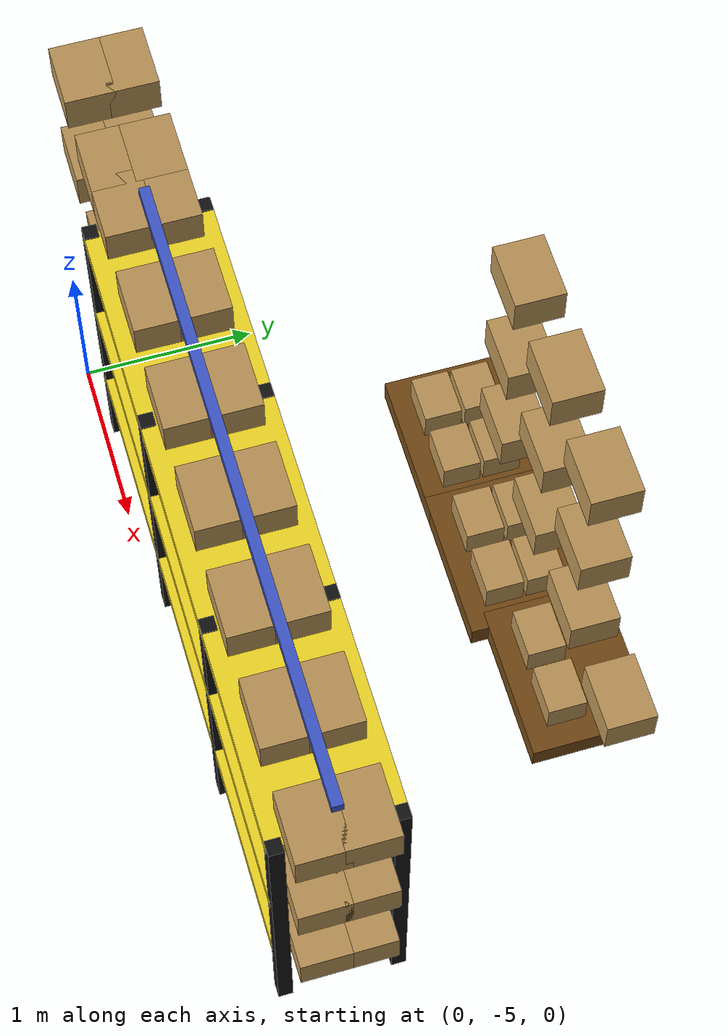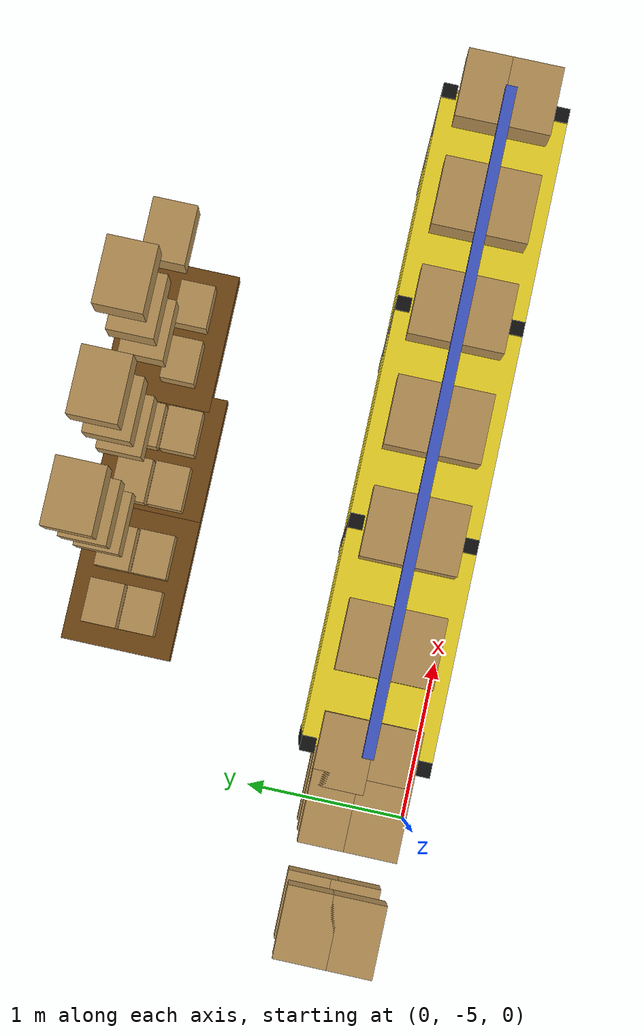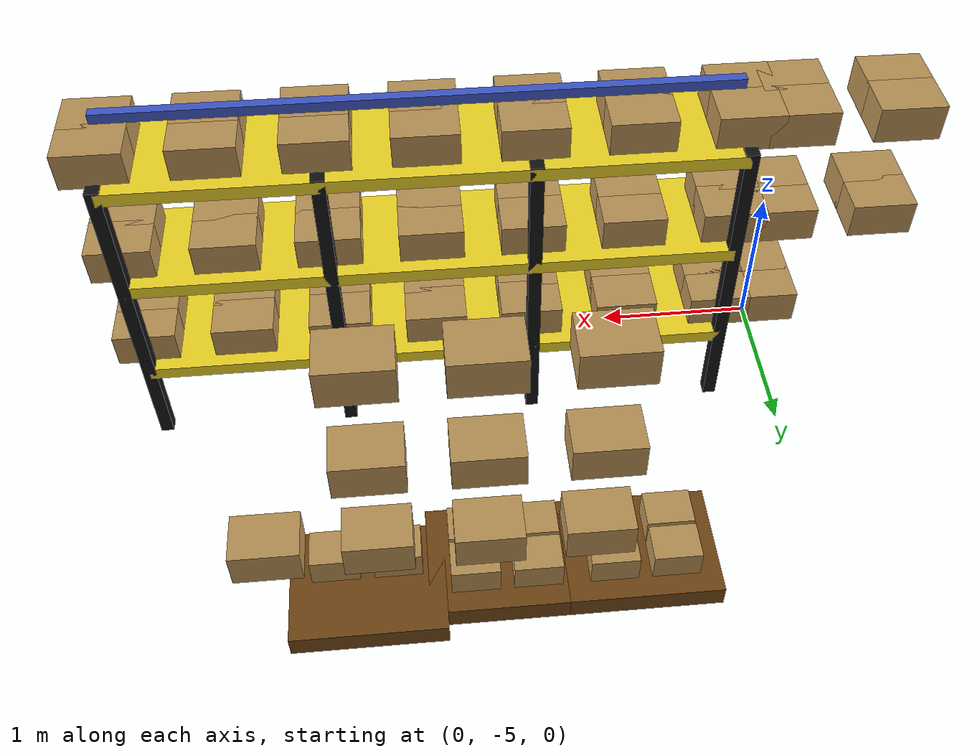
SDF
<sdf version="1.6">
 <world name="fuel_warehouse_world">
  <include><uri>model://sun</uri></include>
  <model name="right_rack_bottom_box_0">
   <static>true</static>
   <pose>1.4000000000000001 -2.8200000000000003 0.68 0 0 0</pose>
   <link name="link">
    <visual name="visual">
     <geometry><box><size>0.38 0.28 0.22</size></box></geometry>
     <material><ambient>0.73 0.58 0.34 1</ambient><diffuse>0.73 0.58 0.34 1</diffuse></material>
    </visual>
    <collision name="collision"><geometry><box><size>0.38 0.28 0.22</size></box></geometry></collision>
   </link>
  </model>
  <model name="right_rack_bottom_box_2">
   <static>true</static>
   <pose>2.0 -2.8200000000000003 0.68 0 0 0</pose>
   <link name="link">
    <visual name="visual">
     <geometry><box><size>0.38 0.28 0.22</size></box></geometry>
     <material><ambient>0.73 0.58 0.34 1</ambient><diffuse>0.73 0.58 0.34 1</diffuse></material>
    </visual>
    <collision name="collision"><geometry><box><size>0.38 0.28 0.22</size></box></geometry></collision>
   </link>
  </model>
  <model name="right_rack_bottom_box_4">
   <static>true</static>
   <pose>2.6 -2.8200000000000003 0.68 0 0 0</pose>
   <link name="link">
    <visual name="visual">
     <geometry><box><size>0.38 0.28 0.22</size></box></geometry>
     <material><ambient>0.73 0.58 0.34 1</ambient><diffuse>0.73 0.58 0.34 1</diffuse></material>
    </visual>
    <collision name="collision"><geometry><box><size>0.38 0.28 0.22</size></box></geometry></collision>
   </link>
  </model>
  <model name="right_rack_bottom_box_6">
   <static>true</static>
   <pose>3.2 -2.8200000000000003 0.68 0 0 0</pose>
   <link name="link">
    <visual name="visual">
     <geometry><box><size>0.38 0.28 0.22</size></box></geometry>
     <material><ambient>0.73 0.58 0.34 1</ambient><diffuse>0.73 0.58 0.34 1</diffuse></material>
    </visual>
    <collision name="collision"><geometry><box><size>0.38 0.28 0.22</size></box></geometry></collision>
   </link>
  </model>
  <model name="right_rack_bottom_box_14">
   <static>true</static>
   <pose>1.4000000000000001 -2.8200000000000003 1.38 0 0 0</pose>
   <link name="link">
    <visual name="visual">
     <geometry><box><size>0.38 0.28 0.22</size></box></geometry>
     <material><ambient>0.73 0.58 0.34 1</ambient><diffuse>0.73 0.58 0.34 1</diffuse></material>
    </visual>
    <collision name="collision"><geometry><box><size>0.38 0.28 0.22</size></box></geometry></collision>
   </link>
  </model>
  <model name="right_rack_bottom_box_16">
   <static>true</static>
   <pose>2.0 -2.8200000000000003 1.38 0 0 0</pose>
   <link name="link">
    <visual name="visual">
     <geometry><box><size>0.38 0.28 0.22</size></box></geometry>
     <material><ambient>0.73 0.58 0.34 1</ambient><diffuse>0.73 0.58 0.34 1</diffuse></material>
    </visual>
    <collision name="collision"><geometry><box><size>0.38 0.28 0.22</size></box></geometry></collision>
   </link>
  </model>
  <model name="right_rack_bottom_box_18">
   <static>true</static>
   <pose>2.6 -2.8200000000000003 1.38 0 0 0</pose>
   <link name="link">
    <visual name="visual">
     <geometry><box><size>0.38 0.28 0.22</size></box></geometry>
     <material><ambient>0.73 0.58 0.34 1</ambient><diffuse>0.73 0.58 0.34 1</diffuse></material>
    </visual>
    <collision name="collision"><geometry><box><size>0.38 0.28 0.22</size></box></geometry></collision>
   </link>
  </model>
  <model name="right_rack_bottom_box_28">
   <static>true</static>
   <pose>1.4000000000000001 -2.8200000000000003 2.08 0 0 0</pose>
   <link name="link">
    <visual name="visual">
     <geometry><box><size>0.38 0.28 0.22</size></box></geometry>
     <material><ambient>0.73 0.58 0.34 1</ambient><diffuse>0.73 0.58 0.34 1</diffuse></material>
    </visual>
    <collision name="collision"><geometry><box><size>0.38 0.28 0.22</size></box></geometry></collision>
   </link>
  </model>
  <model name="right_rack_bottom_box_30">
   <static>true</static>
   <pose>2.0 -2.8200000000000003 2.08 0 0 0</pose>
   <link name="link">
    <visual name="visual">
     <geometry><box><size>0.38 0.28 0.22</size></box></geometry>
     <material><ambient>0.73 0.58 0.34 1</ambient><diffuse>0.73 0.58 0.34 1</diffuse></material>
    </visual>
    <collision name="collision"><geometry><box><size>0.38 0.28 0.22</size></box></geometry></collision>
   </link>
  </model>
  <model name="right_rack_bottom_box_32">
   <static>true</static>
   <pose>2.6 -2.8200000000000003 2.08 0 0 0</pose>
   <link name="link">
    <visual name="visual">
     <geometry><box><size>0.38 0.28 0.22</size></box></geometry>
     <material><ambient>0.73 0.58 0.34 1</ambient><diffuse>0.73 0.58 0.34 1</diffuse></material>
    </visual>
    <collision name="collision"><geometry><box><size>0.38 0.28 0.22</size></box></geometry></collision>
   </link>
  </model>
  <model name="bottom_left_box_12">
   <static>true</static>
   <pose>0.10000000000000009 -4.72 0.68 0 0 0</pose>
   <link name="link">
    <visual name="visual">
     <geometry><box><size>0.38 0.28 0.22</size></box></geometry>
     <material><ambient>0.73 0.58 0.34 1</ambient><diffuse>0.73 0.58 0.34 1</diffuse></material>
    </visual>
    <collision name="collision"><geometry><box><size>0.38 0.28 0.22</size></box></geometry></collision>
   </link>
  </model>
  <model name="bottom_left_box_13">
   <static>true</static>
   <pose>0.10000000000000009 -4.4799999999999995 0.68 0 0 0</pose>
   <link name="link">
    <visual name="visual">
     <geometry><box><size>0.38 0.28 0.22</size></box></geometry>
     <material><ambient>0.73 0.58 0.34 1</ambient><diffuse>0.73 0.58 0.34 1</diffuse></material>
    </visual>
    <collision name="collision"><geometry><box><size>0.38 0.28 0.22</size></box></geometry></collision>
   </link>
  </model>
  <model name="bottom_left_box_24">
   <static>true</static>
   <pose>-0.5 -4.72 1.38 0 0 0</pose>
   <link name="link">
    <visual name="visual">
     <geometry><box><size>0.38 0.28 0.22</size></box></geometry>
     <material><ambient>0.73 0.58 0.34 1</ambient><diffuse>0.73 0.58 0.34 1</diffuse></material>
    </visual>
    <collision name="collision"><geometry><box><size>0.38 0.28 0.22</size></box></geometry></collision>
   </link>
  </model>
  <model name="bottom_left_box_25">
   <static>true</static>
   <pose>-0.5 -4.4799999999999995 1.38 0 0 0</pose>
   <link name="link">
    <visual name="visual">
     <geometry><box><size>0.38 0.28 0.22</size></box></geometry>
     <material><ambient>0.73 0.58 0.34 1</ambient><diffuse>0.73 0.58 0.34 1</diffuse></material>
    </visual>
    <collision name="collision"><geometry><box><size>0.38 0.28 0.22</size></box></geometry></collision>
   </link>
  </model>
  <model name="bottom_left_box_26">
   <static>true</static>
   <pose>0.10000000000000009 -4.72 1.38 0 0 0</pose>
   <link name="link">
    <visual name="visual">
     <geometry><box><size>0.38 0.28 0.22</size></box></geometry>
     <material><ambient>0.73 0.58 0.34 1</ambient><diffuse>0.73 0.58 0.34 1</diffuse></material>
    </visual>
    <collision name="collision"><geometry><box><size>0.38 0.28 0.22</size></box></geometry></collision>
   </link>
  </model>
  <model name="bottom_left_box_27">
   <static>true</static>
   <pose>0.10000000000000009 -4.4799999999999995 1.38 0 0 0</pose>
   <link name="link">
    <visual name="visual">
     <geometry><box><size>0.38 0.28 0.22</size></box></geometry>
     <material><ambient>0.73 0.58 0.34 1</ambient><diffuse>0.73 0.58 0.34 1</diffuse></material>
    </visual>
    <collision name="collision"><geometry><box><size>0.38 0.28 0.22</size></box></geometry></collision>
   </link>
  </model>
  <model name="bottom_left_box_38">
   <static>true</static>
   <pose>-0.5 -4.72 2.08 0 0 0</pose>
   <link name="link">
    <visual name="visual">
     <geometry><box><size>0.38 0.28 0.22</size></box></geometry>
     <material><ambient>0.73 0.58 0.34 1</ambient><diffuse>0.73 0.58 0.34 1</diffuse></material>
    </visual>
    <collision name="collision"><geometry><box><size>0.38 0.28 0.22</size></box></geometry></collision>
   </link>
  </model>
  <model name="bottom_left_box_39">
   <static>true</static>
   <pose>-0.5 -4.4799999999999995 2.08 0 0 0</pose>
   <link name="link">
    <visual name="visual">
     <geometry><box><size>0.38 0.28 0.22</size></box></geometry>
     <material><ambient>0.73 0.58 0.34 1</ambient><diffuse>0.73 0.58 0.34 1</diffuse></material>
    </visual>
    <collision name="collision"><geometry><box><size>0.38 0.28 0.22</size></box></geometry></collision>
   </link>
  </model>
  <model name="bottom_left_box_40">
   <static>true</static>
   <pose>0.10000000000000009 -4.72 2.08 0 0 0</pose>
   <link name="link">
    <visual name="visual">
     <geometry><box><size>0.38 0.28 0.22</size></box></geometry>
     <material><ambient>0.73 0.58 0.34 1</ambient><diffuse>0.73 0.58 0.34 1</diffuse></material>
    </visual>
    <collision name="collision"><geometry><box><size>0.38 0.28 0.22</size></box></geometry></collision>
   </link>
  </model>
  <model name="bottom_left_box_41">
   <static>true</static>
   <pose>0.10000000000000009 -4.4799999999999995 2.08 0 0 0</pose>
   <link name="link">
    <visual name="visual">
     <geometry><box><size>0.38 0.28 0.22</size></box></geometry>
     <material><ambient>0.73 0.58 0.34 1</ambient><diffuse>0.73 0.58 0.34 1</diffuse></material>
    </visual>
    <collision name="collision"><geometry><box><size>0.38 0.28 0.22</size></box></geometry></collision>
   </link>
  </model>
  <model name="bottom_right">
   <static>true</static>
   <pose>2.2 -4.6 0 0 0 0.0</pose>
   <link name="deck_0">
    <pose>0 0 0.55 0 0 0</pose>
    <visual name="visual">
     <geometry><box><size>3.6 0.7 0.08</size></box></geometry>
     <material><ambient>0.95 0.85 0.15 1</ambient><diffuse>0.95 0.85 0.15 1</diffuse></material>
    </visual>
    <collision name="collision"><geometry><box><size>3.6 0.7 0.08</size></box></geometry></collision>
   </link>
   <link name="deck_1">
    <pose>0 0 1.25 0 0 0</pose>
    <visual name="visual">
     <geometry><box><size>3.6 0.7 0.08</size></box></geometry>
     <material><ambient>0.95 0.85 0.15 1</ambient><diffuse>0.95 0.85 0.15 1</diffuse></material>
    </visual>
    <collision name="collision"><geometry><box><size>3.6 0.7 0.08</size></box></geometry></collision>
   </link>
   <link name="deck_2">
    <pose>0 0 1.95 0 0 0</pose>
    <visual name="visual">
     <geometry><box><size>3.6 0.7 0.08</size></box></geometry>
     <material><ambient>0.95 0.85 0.15 1</ambient><diffuse>0.95 0.85 0.15 1</diffuse></material>
    </visual>
    <collision name="collision"><geometry><box><size>3.6 0.7 0.08</size></box></geometry></collision>
   </link>
   <link name="leg_0_0">
    <pose>-1.8 -0.31 1.0 0 0 0</pose>
    <visual name="visual">
     <geometry><box><size>0.08 0.08 2.0</size></box></geometry>
     <material><ambient>0.07 0.07 0.07 1</ambient><diffuse>0.07 0.07 0.07 1</diffuse></material>
    </visual>
    <collision name="collision"><geometry><box><size>0.08 0.08 2.0</size></box></geometry></collision>
   </link>
   <link name="leg_0_1">
    <pose>-1.8 0.31 1.0 0 0 0</pose>
    <visual name="visual">
     <geometry><box><size>0.08 0.08 2.0</size></box></geometry>
     <material><ambient>0.07 0.07 0.07 1</ambient><diffuse>0.07 0.07 0.07 1</diffuse></material>
    </visual>
    <collision name="collision"><geometry><box><size>0.08 0.08 2.0</size></box></geometry></collision>
   </link>
   <link name="leg_1_0">
    <pose>-0.6 -0.31 1.0 0 0 0</pose>
    <visual name="visual">
     <geometry><box><size>0.08 0.08 2.0</size></box></geometry>
     <material><ambient>0.07 0.07 0.07 1</ambient><diffuse>0.07 0.07 0.07 1</diffuse></material>
    </visual>
    <collision name="collision"><geometry><box><size>0.08 0.08 2.0</size></box></geometry></collision>
   </link>
   <link name="leg_1_1">
    <pose>-0.6 0.31 1.0 0 0 0</pose>
    <visual name="visual">
     <geometry><box><size>0.08 0.08 2.0</size></box></geometry>
     <material><ambient>0.07 0.07 0.07 1</ambient><diffuse>0.07 0.07 0.07 1</diffuse></material>
    </visual>
    <collision name="collision"><geometry><box><size>0.08 0.08 2.0</size></box></geometry></collision>
   </link>
   <link name="leg_2_0">
    <pose>0.6 -0.31 1.0 0 0 0</pose>
    <visual name="visual">
     <geometry><box><size>0.08 0.08 2.0</size></box></geometry>
     <material><ambient>0.07 0.07 0.07 1</ambient><diffuse>0.07 0.07 0.07 1</diffuse></material>
    </visual>
    <collision name="collision"><geometry><box><size>0.08 0.08 2.0</size></box></geometry></collision>
   </link>
   <link name="leg_2_1">
    <pose>0.6 0.31 1.0 0 0 0</pose>
    <visual name="visual">
     <geometry><box><size>0.08 0.08 2.0</size></box></geometry>
     <material><ambient>0.07 0.07 0.07 1</ambient><diffuse>0.07 0.07 0.07 1</diffuse></material>
    </visual>
    <collision name="collision"><geometry><box><size>0.08 0.08 2.0</size></box></geometry></collision>
   </link>
   <link name="leg_3_0">
    <pose>1.8 -0.31 1.0 0 0 0</pose>
    <visual name="visual">
     <geometry><box><size>0.08 0.08 2.0</size></box></geometry>
     <material><ambient>0.07 0.07 0.07 1</ambient><diffuse>0.07 0.07 0.07 1</diffuse></material>
    </visual>
    <collision name="collision"><geometry><box><size>0.08 0.08 2.0</size></box></geometry></collision>
   </link>
   <link name="leg_3_1">
    <pose>1.8 0.31 1.0 0 0 0</pose>
    <visual name="visual">
     <geometry><box><size>0.08 0.08 2.0</size></box></geometry>
     <material><ambient>0.07 0.07 0.07 1</ambient><diffuse>0.07 0.07 0.07 1</diffuse></material>
    </visual>
    <collision name="collision"><geometry><box><size>0.08 0.08 2.0</size></box></geometry></collision>
   </link>
   <link name="top_beam">
    <pose>0 0 2.25 0 0 0</pose>
    <visual name="visual">
     <geometry><box><size>3.6 0.06 0.06</size></box></geometry>
     <material><ambient>0.25 0.35 0.8 1</ambient><diffuse>0.25 0.35 0.8 1</diffuse></material>
    </visual>
   </link>
  </model>
  <model name="bottom_right_box_0">
   <static>true</static>
   <pose>0.40000000000000013 -4.72 0.68 0 0 0</pose>
   <link name="link">
    <visual name="visual">
     <geometry><box><size>0.38 0.28 0.22</size></box></geometry>
     <material><ambient>0.73 0.58 0.34 1</ambient><diffuse>0.73 0.58 0.34 1</diffuse></material>
    </visual>
    <collision name="collision"><geometry><box><size>0.38 0.28 0.22</size></box></geometry></collision>
   </link>
  </model>
  <model name="bottom_right_box_1">
   <static>true</static>
   <pose>0.40000000000000013 -4.4799999999999995 0.68 0 0 0</pose>
   <link name="link">
    <visual name="visual">
     <geometry><box><size>0.38 0.28 0.22</size></box></geometry>
     <material><ambient>0.73 0.58 0.34 1</ambient><diffuse>0.73 0.58 0.34 1</diffuse></material>
    </visual>
    <collision name="collision"><geometry><box><size>0.38 0.28 0.22</size></box></geometry></collision>
   </link>
  </model>
  <model name="bottom_right_box_2">
   <static>true</static>
   <pose>1.0000000000000002 -4.72 0.68 0 0 0</pose>
   <link name="link">
    <visual name="visual">
     <geometry><box><size>0.38 0.28 0.22</size></box></geometry>
     <material><ambient>0.73 0.58 0.34 1</ambient><diffuse>0.73 0.58 0.34 1</diffuse></material>
    </visual>
    <collision name="collision"><geometry><box><size>0.38 0.28 0.22</size></box></geometry></collision>
   </link>
  </model>
  <model name="bottom_right_box_3">
   <static>true</static>
   <pose>1.0000000000000002 -4.4799999999999995 0.68 0 0 0</pose>
   <link name="link">
    <visual name="visual">
     <geometry><box><size>0.38 0.28 0.22</size></box></geometry>
     <material><ambient>0.73 0.58 0.34 1</ambient><diffuse>0.73 0.58 0.34 1</diffuse></material>
    </visual>
    <collision name="collision"><geometry><box><size>0.38 0.28 0.22</size></box></geometry></collision>
   </link>
  </model>
  <model name="bottom_right_box_4">
   <static>true</static>
   <pose>1.6 -4.72 0.68 0 0 0</pose>
   <link name="link">
    <visual name="visual">
     <geometry><box><size>0.38 0.28 0.22</size></box></geometry>
     <material><ambient>0.73 0.58 0.34 1</ambient><diffuse>0.73 0.58 0.34 1</diffuse></material>
    </visual>
    <collision name="collision"><geometry><box><size>0.38 0.28 0.22</size></box></geometry></collision>
   </link>
  </model>
  <model name="bottom_right_box_5">
   <static>true</static>
   <pose>1.6 -4.4799999999999995 0.68 0 0 0</pose>
   <link name="link">
    <visual name="visual">
     <geometry><box><size>0.38 0.28 0.22</size></box></geometry>
     <material><ambient>0.73 0.58 0.34 1</ambient><diffuse>0.73 0.58 0.34 1</diffuse></material>
    </visual>
    <collision name="collision"><geometry><box><size>0.38 0.28 0.22</size></box></geometry></collision>
   </link>
  </model>
  <model name="bottom_right_box_6">
   <static>true</static>
   <pose>2.2 -4.72 0.68 0 0 0</pose>
   <link name="link">
    <visual name="visual">
     <geometry><box><size>0.38 0.28 0.22</size></box></geometry>
     <material><ambient>0.73 0.58 0.34 1</ambient><diffuse>0.73 0.58 0.34 1</diffuse></material>
    </visual>
    <collision name="collision"><geometry><box><size>0.38 0.28 0.22</size></box></geometry></collision>
   </link>
  </model>
  <model name="bottom_right_box_7">
   <static>true</static>
   <pose>2.2 -4.4799999999999995 0.68 0 0 0</pose>
   <link name="link">
    <visual name="visual">
     <geometry><box><size>0.38 0.28 0.22</size></box></geometry>
     <material><ambient>0.73 0.58 0.34 1</ambient><diffuse>0.73 0.58 0.34 1</diffuse></material>
    </visual>
    <collision name="collision"><geometry><box><size>0.38 0.28 0.22</size></box></geometry></collision>
   </link>
  </model>
  <model name="bottom_right_box_8">
   <static>true</static>
   <pose>2.8000000000000003 -4.72 0.68 0 0 0</pose>
   <link name="link">
    <visual name="visual">
     <geometry><box><size>0.38 0.28 0.22</size></box></geometry>
     <material><ambient>0.73 0.58 0.34 1</ambient><diffuse>0.73 0.58 0.34 1</diffuse></material>
    </visual>
    <collision name="collision"><geometry><box><size>0.38 0.28 0.22</size></box></geometry></collision>
   </link>
  </model>
  <model name="bottom_right_box_9">
   <static>true</static>
   <pose>2.8000000000000003 -4.4799999999999995 0.68 0 0 0</pose>
   <link name="link">
    <visual name="visual">
     <geometry><box><size>0.38 0.28 0.22</size></box></geometry>
     <material><ambient>0.73 0.58 0.34 1</ambient><diffuse>0.73 0.58 0.34 1</diffuse></material>
    </visual>
    <collision name="collision"><geometry><box><size>0.38 0.28 0.22</size></box></geometry></collision>
   </link>
  </model>
  <model name="bottom_right_box_10">
   <static>true</static>
   <pose>3.4000000000000004 -4.72 0.68 0 0 0</pose>
   <link name="link">
    <visual name="visual">
     <geometry><box><size>0.38 0.28 0.22</size></box></geometry>
     <material><ambient>0.73 0.58 0.34 1</ambient><diffuse>0.73 0.58 0.34 1</diffuse></material>
    </visual>
    <collision name="collision"><geometry><box><size>0.38 0.28 0.22</size></box></geometry></collision>
   </link>
  </model>
  <model name="bottom_right_box_11">
   <static>true</static>
   <pose>3.4000000000000004 -4.4799999999999995 0.68 0 0 0</pose>
   <link name="link">
    <visual name="visual">
     <geometry><box><size>0.38 0.28 0.22</size></box></geometry>
     <material><ambient>0.73 0.58 0.34 1</ambient><diffuse>0.73 0.58 0.34 1</diffuse></material>
    </visual>
    <collision name="collision"><geometry><box><size>0.38 0.28 0.22</size></box></geometry></collision>
   </link>
  </model>
  <model name="bottom_right_box_12">
   <static>true</static>
   <pose>4.0 -4.72 0.68 0 0 0</pose>
   <link name="link">
    <visual name="visual">
     <geometry><box><size>0.38 0.28 0.22</size></box></geometry>
     <material><ambient>0.73 0.58 0.34 1</ambient><diffuse>0.73 0.58 0.34 1</diffuse></material>
    </visual>
    <collision name="collision"><geometry><box><size>0.38 0.28 0.22</size></box></geometry></collision>
   </link>
  </model>
  <model name="bottom_right_box_13">
   <static>true</static>
   <pose>4.0 -4.4799999999999995 0.68 0 0 0</pose>
   <link name="link">
    <visual name="visual">
     <geometry><box><size>0.38 0.28 0.22</size></box></geometry>
     <material><ambient>0.73 0.58 0.34 1</ambient><diffuse>0.73 0.58 0.34 1</diffuse></material>
    </visual>
    <collision name="collision"><geometry><box><size>0.38 0.28 0.22</size></box></geometry></collision>
   </link>
  </model>
  <model name="bottom_right_box_14">
   <static>true</static>
   <pose>0.40000000000000013 -4.72 1.38 0 0 0</pose>
   <link name="link">
    <visual name="visual">
     <geometry><box><size>0.38 0.28 0.22</size></box></geometry>
     <material><ambient>0.73 0.58 0.34 1</ambient><diffuse>0.73 0.58 0.34 1</diffuse></material>
    </visual>
    <collision name="collision"><geometry><box><size>0.38 0.28 0.22</size></box></geometry></collision>
   </link>
  </model>
  <model name="bottom_right_box_15">
   <static>true</static>
   <pose>0.40000000000000013 -4.4799999999999995 1.38 0 0 0</pose>
   <link name="link">
    <visual name="visual">
     <geometry><box><size>0.38 0.28 0.22</size></box></geometry>
     <material><ambient>0.73 0.58 0.34 1</ambient><diffuse>0.73 0.58 0.34 1</diffuse></material>
    </visual>
    <collision name="collision"><geometry><box><size>0.38 0.28 0.22</size></box></geometry></collision>
   </link>
  </model>
  <model name="bottom_right_box_16">
   <static>true</static>
   <pose>1.0000000000000002 -4.72 1.38 0 0 0</pose>
   <link name="link">
    <visual name="visual">
     <geometry><box><size>0.38 0.28 0.22</size></box></geometry>
     <material><ambient>0.73 0.58 0.34 1</ambient><diffuse>0.73 0.58 0.34 1</diffuse></material>
    </visual>
    <collision name="collision"><geometry><box><size>0.38 0.28 0.22</size></box></geometry></collision>
   </link>
  </model>
  <model name="bottom_right_box_17">
   <static>true</static>
   <pose>1.0000000000000002 -4.4799999999999995 1.38 0 0 0</pose>
   <link name="link">
    <visual name="visual">
     <geometry><box><size>0.38 0.28 0.22</size></box></geometry>
     <material><ambient>0.73 0.58 0.34 1</ambient><diffuse>0.73 0.58 0.34 1</diffuse></material>
    </visual>
    <collision name="collision"><geometry><box><size>0.38 0.28 0.22</size></box></geometry></collision>
   </link>
  </model>
  <model name="bottom_right_box_18">
   <static>true</static>
   <pose>1.6 -4.72 1.38 0 0 0</pose>
   <link name="link">
    <visual name="visual">
     <geometry><box><size>0.38 0.28 0.22</size></box></geometry>
     <material><ambient>0.73 0.58 0.34 1</ambient><diffuse>0.73 0.58 0.34 1</diffuse></material>
    </visual>
    <collision name="collision"><geometry><box><size>0.38 0.28 0.22</size></box></geometry></collision>
   </link>
  </model>
  <model name="bottom_right_box_19">
   <static>true</static>
   <pose>1.6 -4.4799999999999995 1.38 0 0 0</pose>
   <link name="link">
    <visual name="visual">
     <geometry><box><size>0.38 0.28 0.22</size></box></geometry>
     <material><ambient>0.73 0.58 0.34 1</ambient><diffuse>0.73 0.58 0.34 1</diffuse></material>
    </visual>
    <collision name="collision"><geometry><box><size>0.38 0.28 0.22</size></box></geometry></collision>
   </link>
  </model>
  <model name="bottom_right_box_20">
   <static>true</static>
   <pose>2.2 -4.72 1.38 0 0 0</pose>
   <link name="link">
    <visual name="visual">
     <geometry><box><size>0.38 0.28 0.22</size></box></geometry>
     <material><ambient>0.73 0.58 0.34 1</ambient><diffuse>0.73 0.58 0.34 1</diffuse></material>
    </visual>
    <collision name="collision"><geometry><box><size>0.38 0.28 0.22</size></box></geometry></collision>
   </link>
  </model>
  <model name="bottom_right_box_21">
   <static>true</static>
   <pose>2.2 -4.4799999999999995 1.38 0 0 0</pose>
   <link name="link">
    <visual name="visual">
     <geometry><box><size>0.38 0.28 0.22</size></box></geometry>
     <material><ambient>0.73 0.58 0.34 1</ambient><diffuse>0.73 0.58 0.34 1</diffuse></material>
    </visual>
    <collision name="collision"><geometry><box><size>0.38 0.28 0.22</size></box></geometry></collision>
   </link>
  </model>
  <model name="bottom_right_box_22">
   <static>true</static>
   <pose>2.8000000000000003 -4.72 1.38 0 0 0</pose>
   <link name="link">
    <visual name="visual">
     <geometry><box><size>0.38 0.28 0.22</size></box></geometry>
     <material><ambient>0.73 0.58 0.34 1</ambient><diffuse>0.73 0.58 0.34 1</diffuse></material>
    </visual>
    <collision name="collision"><geometry><box><size>0.38 0.28 0.22</size></box></geometry></collision>
   </link>
  </model>
  <model name="bottom_right_box_23">
   <static>true</static>
   <pose>2.8000000000000003 -4.4799999999999995 1.38 0 0 0</pose>
   <link name="link">
    <visual name="visual">
     <geometry><box><size>0.38 0.28 0.22</size></box></geometry>
     <material><ambient>0.73 0.58 0.34 1</ambient><diffuse>0.73 0.58 0.34 1</diffuse></material>
    </visual>
    <collision name="collision"><geometry><box><size>0.38 0.28 0.22</size></box></geometry></collision>
   </link>
  </model>
  <model name="bottom_right_box_24">
   <static>true</static>
   <pose>3.4000000000000004 -4.72 1.38 0 0 0</pose>
   <link name="link">
    <visual name="visual">
     <geometry><box><size>0.38 0.28 0.22</size></box></geometry>
     <material><ambient>0.73 0.58 0.34 1</ambient><diffuse>0.73 0.58 0.34 1</diffuse></material>
    </visual>
    <collision name="collision"><geometry><box><size>0.38 0.28 0.22</size></box></geometry></collision>
   </link>
  </model>
  <model name="bottom_right_box_25">
   <static>true</static>
   <pose>3.4000000000000004 -4.4799999999999995 1.38 0 0 0</pose>
   <link name="link">
    <visual name="visual">
     <geometry><box><size>0.38 0.28 0.22</size></box></geometry>
     <material><ambient>0.73 0.58 0.34 1</ambient><diffuse>0.73 0.58 0.34 1</diffuse></material>
    </visual>
    <collision name="collision"><geometry><box><size>0.38 0.28 0.22</size></box></geometry></collision>
   </link>
  </model>
  <model name="bottom_right_box_26">
   <static>true</static>
   <pose>4.0 -4.72 1.38 0 0 0</pose>
   <link name="link">
    <visual name="visual">
     <geometry><box><size>0.38 0.28 0.22</size></box></geometry>
     <material><ambient>0.73 0.58 0.34 1</ambient><diffuse>0.73 0.58 0.34 1</diffuse></material>
    </visual>
    <collision name="collision"><geometry><box><size>0.38 0.28 0.22</size></box></geometry></collision>
   </link>
  </model>
  <model name="bottom_right_box_27">
   <static>true</static>
   <pose>4.0 -4.4799999999999995 1.38 0 0 0</pose>
   <link name="link">
    <visual name="visual">
     <geometry><box><size>0.38 0.28 0.22</size></box></geometry>
     <material><ambient>0.73 0.58 0.34 1</ambient><diffuse>0.73 0.58 0.34 1</diffuse></material>
    </visual>
    <collision name="collision"><geometry><box><size>0.38 0.28 0.22</size></box></geometry></collision>
   </link>
  </model>
  <model name="bottom_right_box_28">
   <static>true</static>
   <pose>0.40000000000000013 -4.72 2.08 0 0 0</pose>
   <link name="link">
    <visual name="visual">
     <geometry><box><size>0.38 0.28 0.22</size></box></geometry>
     <material><ambient>0.73 0.58 0.34 1</ambient><diffuse>0.73 0.58 0.34 1</diffuse></material>
    </visual>
    <collision name="collision"><geometry><box><size>0.38 0.28 0.22</size></box></geometry></collision>
   </link>
  </model>
  <model name="bottom_right_box_29">
   <static>true</static>
   <pose>0.40000000000000013 -4.4799999999999995 2.08 0 0 0</pose>
   <link name="link">
    <visual name="visual">
     <geometry><box><size>0.38 0.28 0.22</size></box></geometry>
     <material><ambient>0.73 0.58 0.34 1</ambient><diffuse>0.73 0.58 0.34 1</diffuse></material>
    </visual>
    <collision name="collision"><geometry><box><size>0.38 0.28 0.22</size></box></geometry></collision>
   </link>
  </model>
  <model name="bottom_right_box_30">
   <static>true</static>
   <pose>1.0000000000000002 -4.72 2.08 0 0 0</pose>
   <link name="link">
    <visual name="visual">
     <geometry><box><size>0.38 0.28 0.22</size></box></geometry>
     <material><ambient>0.73 0.58 0.34 1</ambient><diffuse>0.73 0.58 0.34 1</diffuse></material>
    </visual>
    <collision name="collision"><geometry><box><size>0.38 0.28 0.22</size></box></geometry></collision>
   </link>
  </model>
  <model name="bottom_right_box_31">
   <static>true</static>
   <pose>1.0000000000000002 -4.4799999999999995 2.08 0 0 0</pose>
   <link name="link">
    <visual name="visual">
     <geometry><box><size>0.38 0.28 0.22</size></box></geometry>
     <material><ambient>0.73 0.58 0.34 1</ambient><diffuse>0.73 0.58 0.34 1</diffuse></material>
    </visual>
    <collision name="collision"><geometry><box><size>0.38 0.28 0.22</size></box></geometry></collision>
   </link>
  </model>
  <model name="bottom_right_box_32">
   <static>true</static>
   <pose>1.6 -4.72 2.08 0 0 0</pose>
   <link name="link">
    <visual name="visual">
     <geometry><box><size>0.38 0.28 0.22</size></box></geometry>
     <material><ambient>0.73 0.58 0.34 1</ambient><diffuse>0.73 0.58 0.34 1</diffuse></material>
    </visual>
    <collision name="collision"><geometry><box><size>0.38 0.28 0.22</size></box></geometry></collision>
   </link>
  </model>
  <model name="bottom_right_box_33">
   <static>true</static>
   <pose>1.6 -4.4799999999999995 2.08 0 0 0</pose>
   <link name="link">
    <visual name="visual">
     <geometry><box><size>0.38 0.28 0.22</size></box></geometry>
     <material><ambient>0.73 0.58 0.34 1</ambient><diffuse>0.73 0.58 0.34 1</diffuse></material>
    </visual>
    <collision name="collision"><geometry><box><size>0.38 0.28 0.22</size></box></geometry></collision>
   </link>
  </model>
  <model name="bottom_right_box_34">
   <static>true</static>
   <pose>2.2 -4.72 2.08 0 0 0</pose>
   <link name="link">
    <visual name="visual">
     <geometry><box><size>0.38 0.28 0.22</size></box></geometry>
     <material><ambient>0.73 0.58 0.34 1</ambient><diffuse>0.73 0.58 0.34 1</diffuse></material>
    </visual>
    <collision name="collision"><geometry><box><size>0.38 0.28 0.22</size></box></geometry></collision>
   </link>
  </model>
  <model name="bottom_right_box_35">
   <static>true</static>
   <pose>2.2 -4.4799999999999995 2.08 0 0 0</pose>
   <link name="link">
    <visual name="visual">
     <geometry><box><size>0.38 0.28 0.22</size></box></geometry>
     <material><ambient>0.73 0.58 0.34 1</ambient><diffuse>0.73 0.58 0.34 1</diffuse></material>
    </visual>
    <collision name="collision"><geometry><box><size>0.38 0.28 0.22</size></box></geometry></collision>
   </link>
  </model>
  <model name="bottom_right_box_36">
   <static>true</static>
   <pose>2.8000000000000003 -4.72 2.08 0 0 0</pose>
   <link name="link">
    <visual name="visual">
     <geometry><box><size>0.38 0.28 0.22</size></box></geometry>
     <material><ambient>0.73 0.58 0.34 1</ambient><diffuse>0.73 0.58 0.34 1</diffuse></material>
    </visual>
    <collision name="collision"><geometry><box><size>0.38 0.28 0.22</size></box></geometry></collision>
   </link>
  </model>
  <model name="bottom_right_box_37">
   <static>true</static>
   <pose>2.8000000000000003 -4.4799999999999995 2.08 0 0 0</pose>
   <link name="link">
    <visual name="visual">
     <geometry><box><size>0.38 0.28 0.22</size></box></geometry>
     <material><ambient>0.73 0.58 0.34 1</ambient><diffuse>0.73 0.58 0.34 1</diffuse></material>
    </visual>
    <collision name="collision"><geometry><box><size>0.38 0.28 0.22</size></box></geometry></collision>
   </link>
  </model>
  <model name="bottom_right_box_38">
   <static>true</static>
   <pose>3.4000000000000004 -4.72 2.08 0 0 0</pose>
   <link name="link">
    <visual name="visual">
     <geometry><box><size>0.38 0.28 0.22</size></box></geometry>
     <material><ambient>0.73 0.58 0.34 1</ambient><diffuse>0.73 0.58 0.34 1</diffuse></material>
    </visual>
    <collision name="collision"><geometry><box><size>0.38 0.28 0.22</size></box></geometry></collision>
   </link>
  </model>
  <model name="bottom_right_box_39">
   <static>true</static>
   <pose>3.4000000000000004 -4.4799999999999995 2.08 0 0 0</pose>
   <link name="link">
    <visual name="visual">
     <geometry><box><size>0.38 0.28 0.22</size></box></geometry>
     <material><ambient>0.73 0.58 0.34 1</ambient><diffuse>0.73 0.58 0.34 1</diffuse></material>
    </visual>
    <collision name="collision"><geometry><box><size>0.38 0.28 0.22</size></box></geometry></collision>
   </link>
  </model>
  <model name="bottom_right_box_40">
   <static>true</static>
   <pose>4.0 -4.72 2.08 0 0 0</pose>
   <link name="link">
    <visual name="visual">
     <geometry><box><size>0.38 0.28 0.22</size></box></geometry>
     <material><ambient>0.73 0.58 0.34 1</ambient><diffuse>0.73 0.58 0.34 1</diffuse></material>
    </visual>
    <collision name="collision"><geometry><box><size>0.38 0.28 0.22</size></box></geometry></collision>
   </link>
  </model>
  <model name="bottom_right_box_41">
   <static>true</static>
   <pose>4.0 -4.4799999999999995 2.08 0 0 0</pose>
   <link name="link">
    <visual name="visual">
     <geometry><box><size>0.38 0.28 0.22</size></box></geometry>
     <material><ambient>0.73 0.58 0.34 1</ambient><diffuse>0.73 0.58 0.34 1</diffuse></material>
    </visual>
    <collision name="collision"><geometry><box><size>0.38 0.28 0.22</size></box></geometry></collision>
   </link>
  </model>
  <model name="pallet_group_2_pallet">
   <static>true</static>
   <pose>1.1 -3.0 0.07 0 0 0</pose>
   <link name="link">
    <visual name="visual">
     <geometry><box><size>0.9 0.7 0.14</size></box></geometry>
     <material><ambient>0.45 0.28 0.08 1</ambient><diffuse>0.45 0.28 0.08 1</diffuse></material>
    </visual>
    <collision name="collision"><geometry><box><size>0.9 0.7 0.14</size></box></geometry></collision>
   </link>
  </model>
  <model name="pallet_group_2_box_0">
   <static>true</static>
   <pose>0.9200000000000002 -3.12 0.24 0 0 0</pose>
   <link name="link">
    <visual name="visual">
     <geometry><box><size>0.28 0.22 0.18</size></box></geometry>
     <material><ambient>0.73 0.58 0.34 1</ambient><diffuse>0.73 0.58 0.34 1</diffuse></material>
    </visual>
    <collision name="collision"><geometry><box><size>0.28 0.22 0.18</size></box></geometry></collision>
   </link>
  </model>
  <model name="pallet_group_2_box_1">
   <static>true</static>
   <pose>1.28 -3.12 0.24 0 0 0</pose>
   <link name="link">
    <visual name="visual">
     <geometry><box><size>0.28 0.22 0.18</size></box></geometry>
     <material><ambient>0.73 0.58 0.34 1</ambient><diffuse>0.73 0.58 0.34 1</diffuse></material>
    </visual>
    <collision name="collision"><geometry><box><size>0.28 0.22 0.18</size></box></geometry></collision>
   </link>
  </model>
  <model name="pallet_group_2_box_2">
   <static>true</static>
   <pose>0.9200000000000002 -2.88 0.24 0 0 0</pose>
   <link name="link">
    <visual name="visual">
     <geometry><box><size>0.28 0.22 0.18</size></box></geometry>
     <material><ambient>0.73 0.58 0.34 1</ambient><diffuse>0.73 0.58 0.34 1</diffuse></material>
    </visual>
    <collision name="collision"><geometry><box><size>0.28 0.22 0.18</size></box></geometry></collision>
   </link>
  </model>
  <model name="pallet_group_2_box_3">
   <static>true</static>
   <pose>1.28 -2.88 0.24 0 0 0</pose>
   <link name="link">
    <visual name="visual">
     <geometry><box><size>0.28 0.22 0.18</size></box></geometry>
     <material><ambient>0.73 0.58 0.34 1</ambient><diffuse>0.73 0.58 0.34 1</diffuse></material>
    </visual>
    <collision name="collision"><geometry><box><size>0.28 0.22 0.18</size></box></geometry></collision>
   </link>
  </model>
  <model name="pallet_group_3_pallet">
   <static>true</static>
   <pose>1.9 -3.0 0.07 0 0 0</pose>
   <link name="link">
    <visual name="visual">
     <geometry><box><size>0.9 0.7 0.14</size></box></geometry>
     <material><ambient>0.45 0.28 0.08 1</ambient><diffuse>0.45 0.28 0.08 1</diffuse></material>
    </visual>
    <collision name="collision"><geometry><box><size>0.9 0.7 0.14</size></box></geometry></collision>
   </link>
  </model>
  <model name="pallet_group_3_box_0">
   <static>true</static>
   <pose>1.72 -3.12 0.24 0 0 0</pose>
   <link name="link">
    <visual name="visual">
     <geometry><box><size>0.28 0.22 0.18</size></box></geometry>
     <material><ambient>0.73 0.58 0.34 1</ambient><diffuse>0.73 0.58 0.34 1</diffuse></material>
    </visual>
    <collision name="collision"><geometry><box><size>0.28 0.22 0.18</size></box></geometry></collision>
   </link>
  </model>
  <model name="pallet_group_3_box_1">
   <static>true</static>
   <pose>2.08 -3.12 0.24 0 0 0</pose>
   <link name="link">
    <visual name="visual">
     <geometry><box><size>0.28 0.22 0.18</size></box></geometry>
     <material><ambient>0.73 0.58 0.34 1</ambient><diffuse>0.73 0.58 0.34 1</diffuse></material>
    </visual>
    <collision name="collision"><geometry><box><size>0.28 0.22 0.18</size></box></geometry></collision>
   </link>
  </model>
  <model name="pallet_group_3_box_2">
   <static>true</static>
   <pose>1.72 -2.88 0.24 0 0 0</pose>
   <link name="link">
    <visual name="visual">
     <geometry><box><size>0.28 0.22 0.18</size></box></geometry>
     <material><ambient>0.73 0.58 0.34 1</ambient><diffuse>0.73 0.58 0.34 1</diffuse></material>
    </visual>
    <collision name="collision"><geometry><box><size>0.28 0.22 0.18</size></box></geometry></collision>
   </link>
  </model>
  <model name="pallet_group_3_box_3">
   <static>true</static>
   <pose>2.08 -2.88 0.24 0 0 0</pose>
   <link name="link">
    <visual name="visual">
     <geometry><box><size>0.28 0.22 0.18</size></box></geometry>
     <material><ambient>0.73 0.58 0.34 1</ambient><diffuse>0.73 0.58 0.34 1</diffuse></material>
    </visual>
    <collision name="collision"><geometry><box><size>0.28 0.22 0.18</size></box></geometry></collision>
   </link>
  </model>
  <model name="pallet_group_4_pallet">
   <static>true</static>
   <pose>2.7 -2.9 0.07 0 0 0</pose>
   <link name="link">
    <visual name="visual">
     <geometry><box><size>0.9 0.7 0.14</size></box></geometry>
     <material><ambient>0.45 0.28 0.08 1</ambient><diffuse>0.45 0.28 0.08 1</diffuse></material>
    </visual>
    <collision name="collision"><geometry><box><size>0.9 0.7 0.14</size></box></geometry></collision>
   </link>
  </model>
  <model name="pallet_group_4_box_0">
   <static>true</static>
   <pose>2.52 -3.02 0.24 0 0 0</pose>
   <link name="link">
    <visual name="visual">
     <geometry><box><size>0.28 0.22 0.18</size></box></geometry>
     <material><ambient>0.73 0.58 0.34 1</ambient><diffuse>0.73 0.58 0.34 1</diffuse></material>
    </visual>
    <collision name="collision"><geometry><box><size>0.28 0.22 0.18</size></box></geometry></collision>
   </link>
  </model>
  <model name="pallet_group_4_box_1">
   <static>true</static>
   <pose>2.8800000000000003 -3.02 0.24 0 0 0</pose>
   <link name="link">
    <visual name="visual">
     <geometry><box><size>0.28 0.22 0.18</size></box></geometry>
     <material><ambient>0.73 0.58 0.34 1</ambient><diffuse>0.73 0.58 0.34 1</diffuse></material>
    </visual>
    <collision name="collision"><geometry><box><size>0.28 0.22 0.18</size></box></geometry></collision>
   </link>
  </model>
 </world>
</sdf>
